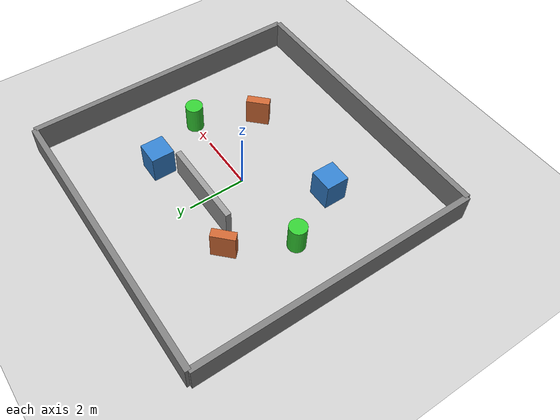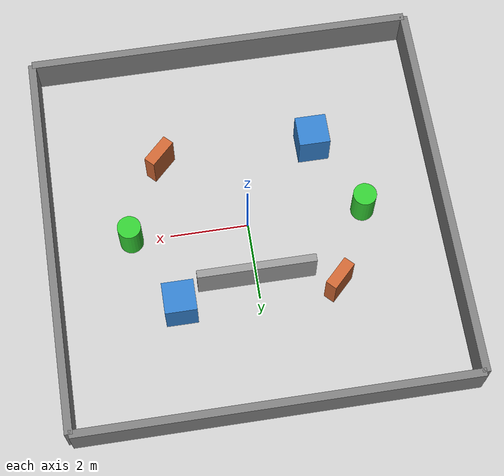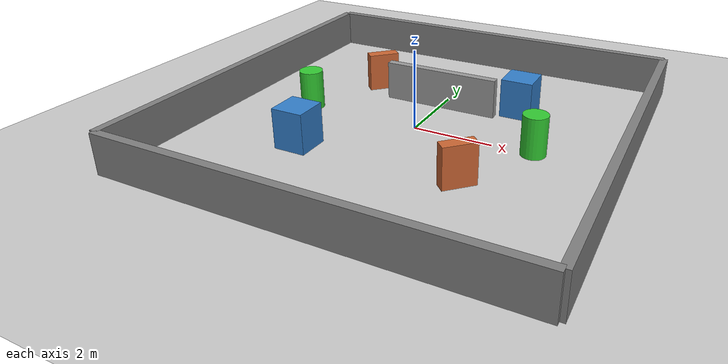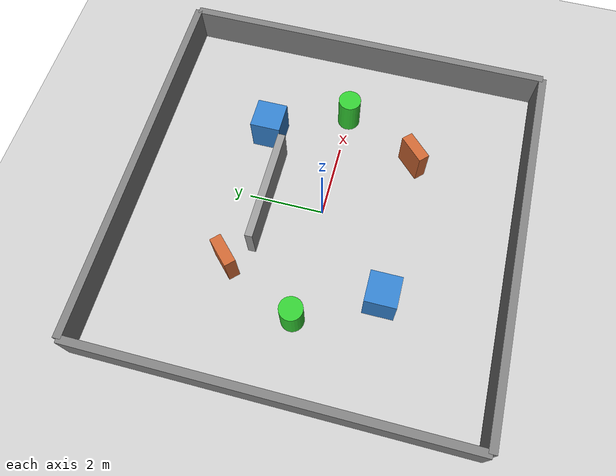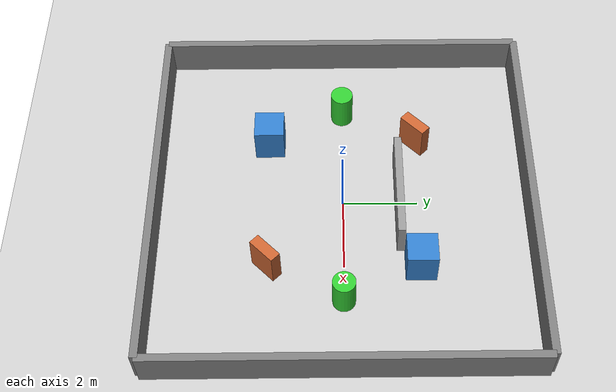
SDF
<?xml version="1.0"?>
<sdf version="1.6">
  <world name="articubot_world">

    <!-- Sun -->
    <include>
      <uri>model://sun</uri>
    </include>

    <!-- Ground Plane -->
    <include>
      <uri>model://ground_plane</uri>
    </include>

    <!-- Physics -->
    <physics type="ode">
      <real_time_update_rate>100</real_time_update_rate>
      <max_step_size>0.01</max_step_size>
      <real_time_factor>1</real_time_factor>
      <ode>
        <solver>
          <type>quick</type>
          <iters>50</iters>
          <sor>1.3</sor>
        </solver>
      </ode>
    </physics>

    <!-- Scene -->
    <scene>
      <ambient>0.4 0.4 0.4 1</ambient>
      <background>0.7 0.7 0.7 1</background>
      <shadows>false</shadows>
    </scene>

    <!-- OUTER WALLS -->
    <!-- North Wall -->
    <model name="wall_north">
      <static>true</static>
      <pose>0 5 0.5 0 0 0</pose>
      <link name="link">
        <collision name="collision">
          <geometry><box><size>10 0.2 1</size></box></geometry>
        </collision>
        <visual name="visual">
          <geometry><box><size>10 0.2 1</size></box></geometry>
          <material>
            <ambient>0.5 0.5 0.5 1</ambient>
            <diffuse>0.5 0.5 0.5 1</diffuse>
          </material>
        </visual>
      </link>
    </model>

    <!-- South Wall -->
    <model name="wall_south">
      <static>true</static>
      <pose>0 -5 0.5 0 0 0</pose>
      <link name="link">
        <collision name="collision">
          <geometry><box><size>10 0.2 1</size></box></geometry>
        </collision>
        <visual name="visual">
          <geometry><box><size>10 0.2 1</size></box></geometry>
          <material>
            <ambient>0.5 0.5 0.5 1</ambient>
            <diffuse>0.5 0.5 0.5 1</diffuse>
          </material>
        </visual>
      </link>
    </model>

    <!-- East Wall -->
    <model name="wall_east">
      <static>true</static>
      <pose>5 0 0.5 0 0 0</pose>
      <link name="link">
        <collision name="collision">
          <geometry><box><size>0.2 10 1</size></box></geometry>
        </collision>
        <visual name="visual">
          <geometry><box><size>0.2 10 1</size></box></geometry>
          <material>
            <ambient>0.5 0.5 0.5 1</ambient>
            <diffuse>0.5 0.5 0.5 1</diffuse>
          </material>
        </visual>
      </link>
    </model>

    <!-- West Wall -->
    <model name="wall_west">
      <static>true</static>
      <pose>-5 0 0.5 0 0 0</pose>
      <link name="link">
        <collision name="collision">
          <geometry><box><size>0.2 10 1</size></box></geometry>
        </collision>
        <visual name="visual">
          <geometry><box><size>0.2 10 1</size></box></geometry>
          <material>
            <ambient>0.5 0.5 0.5 1</ambient>
            <diffuse>0.5 0.5 0.5 1</diffuse>
          </material>
        </visual>
      </link>
    </model>

    <!-- INNER OBSTACLES -->
    <!-- Box 1 -->
    <model name="box_1">
      <static>true</static>
      <pose>2 2 0.5 0 0 0</pose>
      <link name="link">
        <collision name="collision">
          <geometry><box><size>0.8 0.8 1</size></box></geometry>
        </collision>
        <visual name="visual">
          <geometry><box><size>0.8 0.8 1</size></box></geometry>
          <material>
            <ambient>0.2 0.5 0.8 1</ambient>
            <diffuse>0.2 0.5 0.8 1</diffuse>
          </material>
        </visual>
      </link>
    </model>

    <!-- Box 2 -->
    <model name="box_2">
      <static>true</static>
      <pose>-2 -2 0.5 0 0 0</pose>
      <link name="link">
        <collision name="collision">
          <geometry><box><size>0.8 0.8 1</size></box></geometry>
        </collision>
        <visual name="visual">
          <geometry><box><size>0.8 0.8 1</size></box></geometry>
          <material>
            <ambient>0.2 0.5 0.8 1</ambient>
            <diffuse>0.2 0.5 0.8 1</diffuse>
          </material>
        </visual>
      </link>
    </model>

    <!-- Box 3 -->
    <model name="box_3">
      <static>true</static>
      <pose>-2 2 0.5 0 0 0.7854</pose>
      <link name="link">
        <collision name="collision">
          <geometry><box><size>0.8 0.3 1</size></box></geometry>
        </collision>
        <visual name="visual">
          <geometry><box><size>0.8 0.3 1</size></box></geometry>
          <material>
            <ambient>0.8 0.4 0.2 1</ambient>
            <diffuse>0.8 0.4 0.2 1</diffuse>
          </material>
        </visual>
      </link>
    </model>

    <!-- Box 4 -->
    <model name="box_4">
      <static>true</static>
      <pose>2 -2 0.5 0 0 0.7854</pose>
      <link name="link">
        <collision name="collision">
          <geometry><box><size>0.8 0.3 1</size></box></geometry>
        </collision>
        <visual name="visual">
          <geometry><box><size>0.8 0.3 1</size></box></geometry>
          <material>
            <ambient>0.8 0.4 0.2 1</ambient>
            <diffuse>0.8 0.4 0.2 1</diffuse>
          </material>
        </visual>
      </link>
    </model>

    <!-- Cylinder 1 -->
    <model name="cylinder_1">
      <static>true</static>
      <pose>3 0 0.5 0 0 0</pose>
      <link name="link">
        <collision name="collision">
          <geometry><cylinder><radius>0.3</radius><length>1</length></cylinder></geometry>
        </collision>
        <visual name="visual">
          <geometry><cylinder><radius>0.3</radius><length>1</length></cylinder></geometry>
          <material>
            <ambient>0.2 0.8 0.2 1</ambient>
            <diffuse>0.2 0.8 0.2 1</diffuse>
          </material>
        </visual>
      </link>
    </model>

    <!-- Cylinder 2 -->
    <model name="cylinder_2">
      <static>true</static>
      <pose>-3 0 0.5 0 0 0</pose>
      <link name="link">
        <collision name="collision">
          <geometry><cylinder><radius>0.3</radius><length>1</length></cylinder></geometry>
        </collision>
        <visual name="visual">
          <geometry><cylinder><radius>0.3</radius><length>1</length></cylinder></geometry>
          <material>
            <ambient>0.2 0.8 0.2 1</ambient>
            <diffuse>0.2 0.8 0.2 1</diffuse>
          </material>
        </visual>
      </link>
    </model>

    <!-- Inner Wall (creates a corridor) -->
    <model name="inner_wall">
      <static>true</static>
      <pose>0 1.5 0.5 0 0 0</pose>
      <link name="link">
        <collision name="collision">
          <geometry><box><size>3 0.2 1</size></box></geometry>
        </collision>
        <visual name="visual">
          <geometry><box><size>3 0.2 1</size></box></geometry>
          <material>
            <ambient>0.6 0.6 0.6 1</ambient>
            <diffuse>0.6 0.6 0.6 1</diffuse>
          </material>
        </visual>
      </link>
    </model>

  </world>
</sdf>
